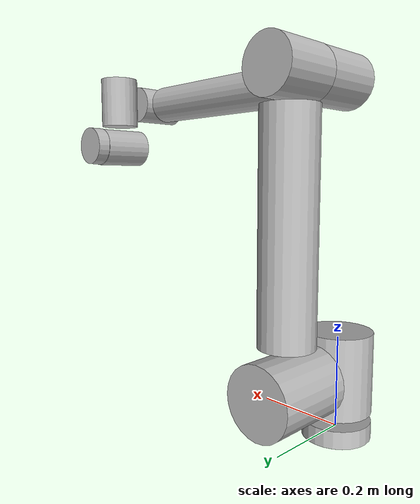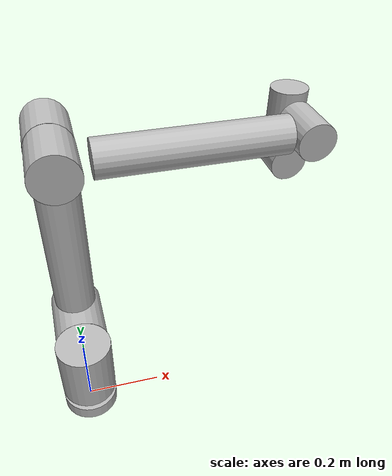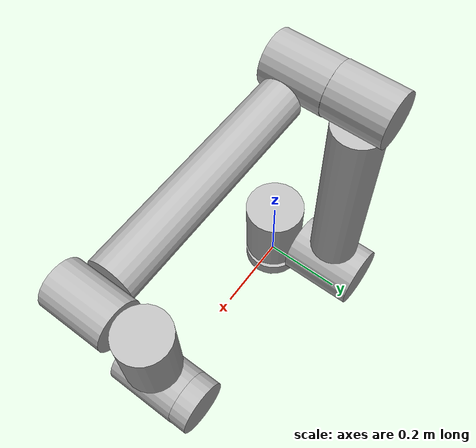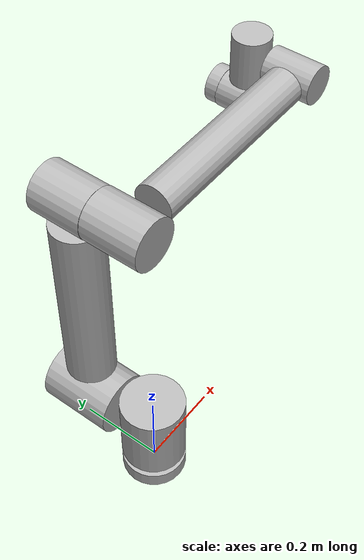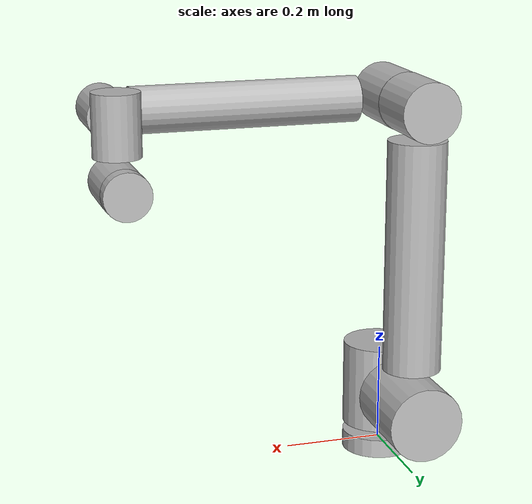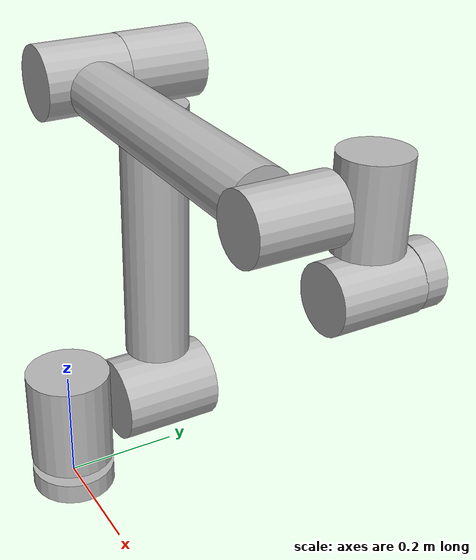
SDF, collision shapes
<?xml version='1.0'?>
<sdf version='1.5'>
  <model name='ur10'>
   <static>true</static>
    <link name='base'>
      <collision name='collision'>
      <pose>0 0 0 0 -0 0</pose>
        <geometry>
          <cylinder>
            <radius>0.075</radius>
            <length>0.038</length>
          </cylinder>
        </geometry>
      </collision>
      <visual name='visual'>
      <pose>0 0 0 0 -0 0</pose>
        <geometry>
          <mesh>
            <uri>model://ur10/meshes/base.dae</uri>
          </mesh>
        </geometry>
      </visual>
    </link>
    <link name='shoulder'>
      <pose>0 0 .1273 0 -0 0</pose>
      <collision name='collision'>
        <geometry>
          <cylinder>
            <radius>0.075</radius>
            <length>0.177</length>
          </cylinder>
        </geometry>
      </collision>
      <visual name='visual'>
        <geometry>
          <mesh>
            <uri>model://ur10/meshes/shoulder.dae</uri>
          </mesh>
        </geometry>
      </visual>
    </link>

    <link name='upper_arm'>
      <pose>0 0.220941 0.1273 3.14159 3.14159 3.14159</pose>

      <collision name='collision1'>
        <pose>0 -0.045 0 1.5707 0 0</pose>
        <geometry>
          <cylinder>
            <radius>0.075</radius>
            <length>0.177</length>
          </cylinder>
        </geometry>
      </collision>

      <collision name='collision2'>
        <pose>0 -0.0436 0.32 0 0 1.5707</pose>
        <geometry>
          <cylinder>
            <radius>0.058</radius>
            <length>0.461</length>
          </cylinder>
        </geometry>
      </collision>

      <collision name='collision3'>
        <pose>0 -0.040 0.613 1.5707 0 0</pose>
        <geometry>
          <cylinder>
            <radius>0.058</radius>
            <length>0.129</length>
          </cylinder>
        </geometry>
      </collision>

      <visual name='visual'>
        <geometry>
          <mesh>
            <uri>model://ur10/meshes/upperarm.dae</uri>
          </mesh>
        </geometry>
      </visual>
    </link>

    <link name='forearm'>
      <pose>0.0 0.049041 0.74 3.14159 1.57079 3.14159</pose>
      <collision name='collision1'>
        <pose>0 0 0.001 1.5707 0 0</pose>
        <geometry>
          <cylinder>
            <radius>0.058</radius>
            <length>0.136</length>
          </cylinder>
        </geometry>
      </collision>

      <collision name='collision2'>
        <pose>0 0 0.305 0 0 1.5707</pose>
        <geometry>
          <cylinder>
            <radius>0.045</radius>
            <length>0.447</length>
          </cylinder>
        </geometry>
      </collision>

      <collision name='collision3'>
        <pose>0 0.001 0.5735 1.5707 0 0</pose>
        <geometry>
          <cylinder>
            <radius>0.045</radius>
            <length>0.119</length>
          </cylinder>
        </geometry>
      </collision>

      <visual name='visua'>
        <geometry>
          <mesh>
            <uri>model://ur10/meshes/forearm.dae</uri>
          </mesh>
        </geometry>
      </visual>
    </link>

    <link name='wrist_1'>
      <pose>0.575 0.05 0.74 3.14159 3.58979e-09 3.14159</pose>
      <collision name='collision'>
        <pose>0 0.115 0.0025 0 0 0</pose>
        <geometry>
          <cylinder>
            <radius>0.0455</radius>
            <length>0.119</length>
          </cylinder>
        </geometry>
      </collision>
      <visual name='visual'>
        <geometry>
          <mesh>
            <uri>model://ur10/meshes/wrist1.dae</uri>
          </mesh>
        </geometry>
      </visual>
    </link>

    <link name='wrist_2'>
      <pose>0.575 0.165 0.74 3.14159 3.58979e-09 3.14159</pose>
      <collision name='collision'>
        <pose>0 0.002 0.11659 1.5707 0 0</pose>
        <geometry>
          <cylinder>
            <radius>0.0455</radius>
            <length>0.119</length>
          </cylinder>
        </geometry>
      </collision>
      <visual name='visual'>
        <geometry>
          <mesh>
            <uri>model://ur10/meshes/wrist2.dae</uri>
          </mesh>
        </geometry>
      </visual>
    </link>

    <link name='wrist_3'>
      <pose>0.575 0.163941 0.625 3.14159 3.58979e-09 3.14159</pose>
      <collision name='collision'>
        <pose>0 0.0765 0 1.5707 0 0</pose>
        <geometry>
          <cylinder>
            <radius>0.045</radius>
            <length>0.031</length>
          </cylinder>
        </geometry>
      </collision>
      <visual name='visual'>
        <geometry>
          <mesh>
            <uri>model://ur10/meshes/wrist3.dae</uri>
          </mesh>
        </geometry>
      </visual>
    </link>

    <joint name='shoulder_pan' type='fixed'>
      <pose>0 0 0 0 0 0</pose>
      <child>shoulder</child>
      <parent>base</parent>
      <axis>
        <xyz>0 0 1</xyz>
      </axis>
    </joint>

    <joint name='shoulder_lift' type='fixed'>
      <child>upper_arm</child>
      <parent>shoulder</parent>
      <axis>
        <xyz>0 1 0</xyz>
      </axis>
    </joint>

    <joint name='elbow' type='fixed'>
      <child>forearm</child>
      <parent>upper_arm</parent>
      <axis>
        <xyz>0 1 0</xyz>
      </axis>
    </joint>

    <joint name='wrist_1' type='fixed'>
      <child>wrist_1</child>
      <parent>forearm</parent>
      <axis>
        <xyz>0 1 0</xyz>
      </axis>
    </joint>

    <joint name='wrist_2' type='fixed'>
      <child>wrist_2</child>
      <parent>wrist_1</parent>
      <axis>
        <xyz>0 0 1</xyz>
      </axis>
    </joint>

    <joint name='wrist_3' type='fixed'>
      <child>wrist_3</child>
      <parent>wrist_2</parent>
      <axis>
        <xyz>0 1 0</xyz>
      </axis>
    </joint>
  </model>
</sdf>
